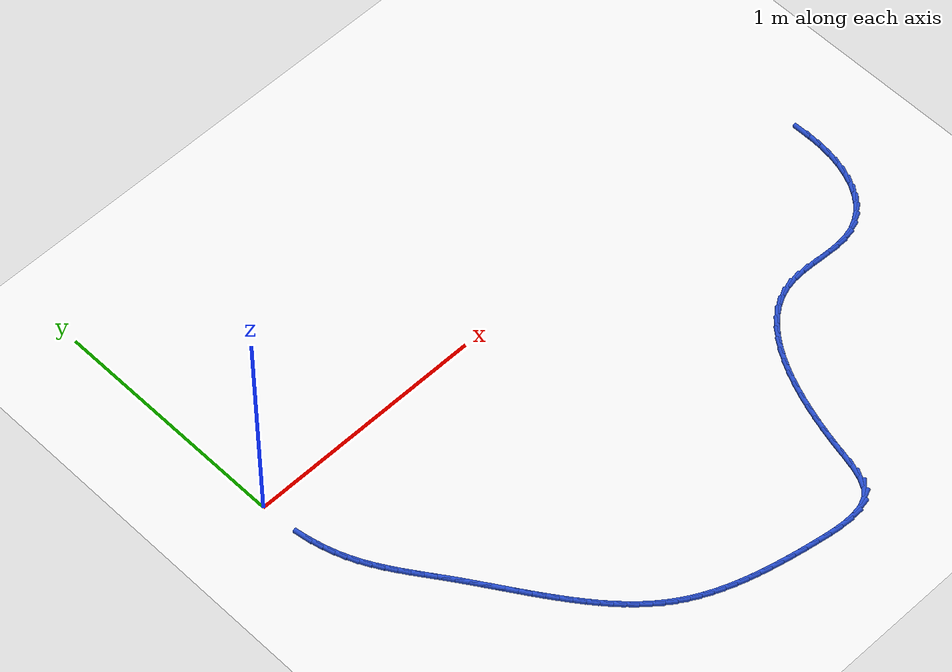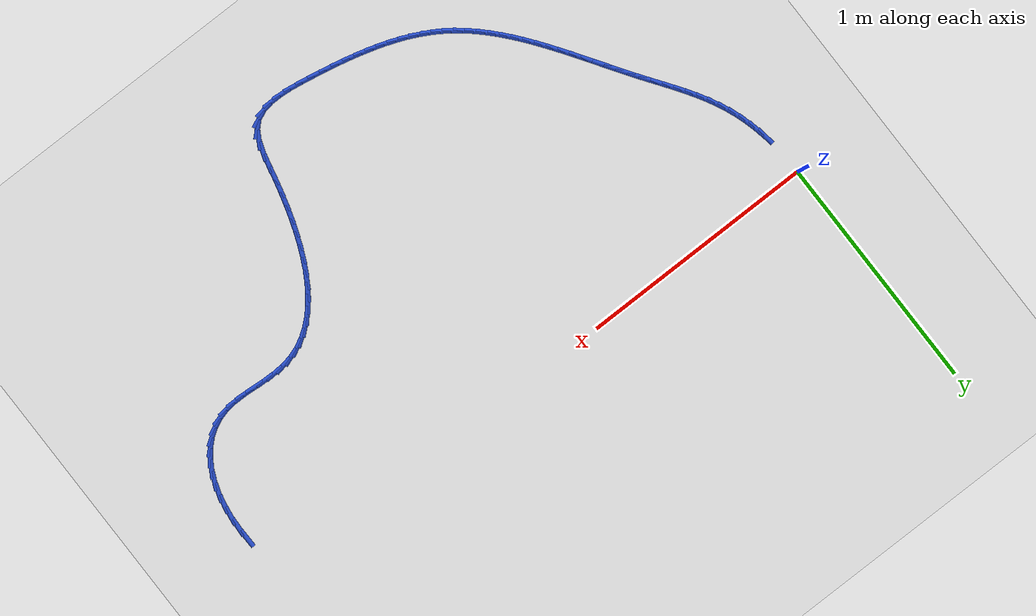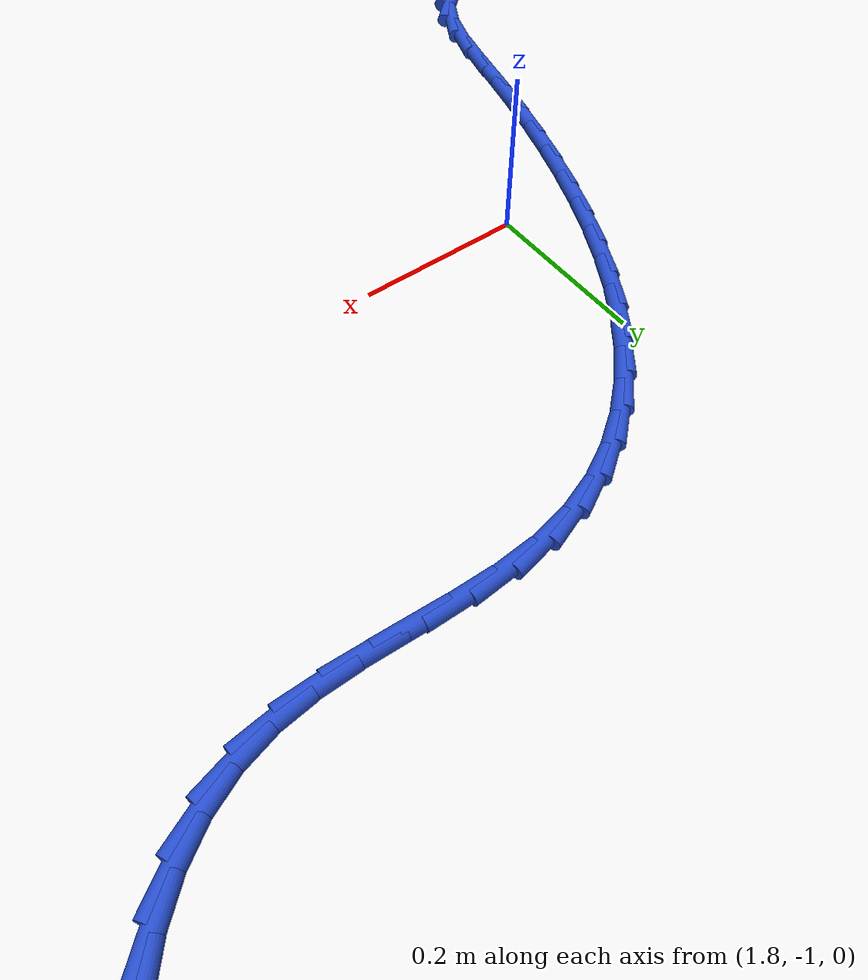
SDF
<sdf version="1.6">
 <world name="default">
  <model name="ground_plane">
   <static>1</static>
   <link name="link">
    <collision name="collision">
     <geometry><plane><normal>0 0 1</normal><size>100 100</size></plane></geometry>
     <surface><friction><ode><mu>100</mu><mu2>50</mu2></ode></friction></surface>
    </collision>
    <visual name="visual">
     <cast_shadows>0</cast_shadows>
     <geometry><plane><normal>0 0 1</normal><size>100 100</size></plane></geometry>
     <material>
      <script><uri>file://media/materials/scripts/gazebo.material</uri><name>Gazebo/WhiteGlow</name></script>
     </material>
    </visual>
   </link>
  </model>
  <model name="line">
   <link name="link_81">
    <pose>2.581419211381479 -0.19078165925782484 0.01 0 1.57 -1.5610725457270038</pose>
    <collision name="collision">
     <geometry><cylinder><radius>0.01</radius><length>0.08</length></cylinder></geometry>
    </collision>
    <visual name="visual">
     <material>
      <script><name>Gazebo/Blue</name><uri>file://media/materials/scripts/gazebo.material</uri></script>
     </material>
     <geometry><cylinder><radius>0.01</radius><length>0.08</length></cylinder></geometry>
    </visual>
   </link>
   <link name="link_82">
    <pose>2.5819640868448097 -0.24681524191579807 0.01 0 1.57 1.5061475454830733</pose>
    <collision name="collision">
     <geometry><cylinder><radius>0.01</radius><length>0.08</length></cylinder></geometry>
    </collision>
    <visual name="visual">
     <material>
      <script><name>Gazebo/Blue</name><uri>file://media/materials/scripts/gazebo.material</uri></script>
     </material>
     <geometry><cylinder><radius>0.01</radius><length>0.08</length></cylinder></geometry>
    </visual>
   </link>
   <link name="link_83">
    <pose>2.578462069793964 -0.30090963886289535 0.01 0 1.57 1.4269497455868427</pose>
    <collision name="collision">
     <geometry><cylinder><radius>0.01</radius><length>0.08</length></cylinder></geometry>
    </collision>
    <visual name="visual">
     <material>
      <script><name>Gazebo/Blue</name><uri>file://media/materials/scripts/gazebo.material</uri></script>
     </material>
     <geometry><cylinder><radius>0.01</radius><length>0.08</length></cylinder></geometry>
    </visual>
   </link>
   <link name="link_84">
    <pose>2.5709711921138307 -0.352625428886454 0.01 0 1.57 1.3413272333123356</pose>
    <collision name="collision">
     <geometry><cylinder><radius>0.01</radius><length>0.08</length></cylinder></geometry>
    </collision>
    <visual name="visual">
     <material>
      <script><name>Gazebo/Blue</name><uri>file://media/materials/scripts/gazebo.material</uri></script>
     </material>
     <geometry><cylinder><radius>0.01</radius><length>0.08</length></cylinder></geometry>
    </visual>
   </link>
   <link name="link_85">
    <pose>2.559549485689301 -0.4015231907738092 0.01 0 1.57 1.2474480559955012</pose>
    <collision name="collision">
     <geometry><cylinder><radius>0.01</radius><length>0.08</length></cylinder></geometry>
    </collision>
    <visual name="visual">
     <material>
      <script><name>Gazebo/Blue</name><uri>file://media/materials/scripts/gazebo.material</uri></script>
     </material>
     <geometry><cylinder><radius>0.01</radius><length>0.08</length></cylinder></geometry>
    </visual>
   </link>
   <link name="link_86">
    <pose>2.5442549824052665 -0.4471635033122984 0.01 0 1.57 1.1432984444206136</pose>
    <collision name="collision">
     <geometry><cylinder><radius>0.01</radius><length>0.08</length></cylinder></geometry>
    </collision>
    <visual name="visual">
     <material>
      <script><name>Gazebo/Blue</name><uri>file://media/materials/scripts/gazebo.material</uri></script>
     </material>
     <geometry><cylinder><radius>0.01</radius><length>0.08</length></cylinder></geometry>
    </visual>
   </link>
   <link name="link_87">
    <pose>2.5251457141466163 -0.4891069452892577 0.01 0 1.57 1.026850299625803</pose>
    <collision name="collision">
     <geometry><cylinder><radius>0.01</radius><length>0.08</length></cylinder></geometry>
    </collision>
    <visual name="visual">
     <material>
      <script><name>Gazebo/Blue</name><uri>file://media/materials/scripts/gazebo.material</uri></script>
     </material>
     <geometry><cylinder><radius>0.01</radius><length>0.08</length></cylinder></geometry>
    </visual>
   </link>
   <link name="link_88">
    <pose>2.502279712798243 -0.5269140954920237 0.01 0 1.57 0.8964306785856334</pose>
    <collision name="collision">
     <geometry><cylinder><radius>0.01</radius><length>0.08</length></cylinder></geometry>
    </collision>
    <visual name="visual">
     <material>
      <script><name>Gazebo/Blue</name><uri>file://media/materials/scripts/gazebo.material</uri></script>
     </material>
     <geometry><cylinder><radius>0.01</radius><length>0.08</length></cylinder></geometry>
    </visual>
   </link>
   <link name="link_89">
    <pose>2.475715010245036 -0.5601455327079334 0.01 0 1.57 0.7513645477855875</pose>
    <collision name="collision">
     <geometry><cylinder><radius>0.01</radius><length>0.08</length></cylinder></geometry>
    </collision>
    <visual name="visual">
     <material>
      <script><name>Gazebo/Blue</name><uri>file://media/materials/scripts/gazebo.material</uri></script>
     </material>
     <geometry><cylinder><radius>0.01</radius><length>0.08</length></cylinder></geometry>
    </visual>
   </link>
   <link name="link_90">
    <pose>2.4455096383718864 -0.5883618357243221 0.01 0 1.57 0.5928309148281456</pose>
    <collision name="collision">
     <geometry><cylinder><radius>0.01</radius><length>0.08</length></cylinder></geometry>
    </collision>
    <visual name="visual">
     <material>
      <script><name>Gazebo/Blue</name><uri>file://media/materials/scripts/gazebo.material</uri></script>
     </material>
     <geometry><cylinder><radius>0.01</radius><length>0.08</length></cylinder></geometry>
    </visual>
   </link>
   <link name="link_91">
    <pose>2.4117216290636856 -0.6111235833285267 0.01 0 1.57 0.42457082757370873</pose>
    <collision name="collision">
     <geometry><cylinder><radius>0.01</radius><length>0.08</length></cylinder></geometry>
    </collision>
    <visual name="visual">
     <material>
      <script><name>Gazebo/Blue</name><uri>file://media/materials/scripts/gazebo.material</uri></script>
     </material>
     <geometry><cylinder><radius>0.01</radius><length>0.08</length></cylinder></geometry>
    </visual>
   </link>
   <link name="link_92">
    <pose>2.374409014205324 -0.6279913543078838 0.01 0 1.57 0.2528009823300197</pose>
    <collision name="collision">
     <geometry><cylinder><radius>0.01</radius><length>0.08</length></cylinder></geometry>
    </collision>
    <visual name="visual">
     <material>
      <script><name>Gazebo/Blue</name><uri>file://media/materials/scripts/gazebo.material</uri></script>
     </material>
     <geometry><cylinder><radius>0.01</radius><length>0.08</length></cylinder></geometry>
    </visual>
   </link>
   <link name="link_93">
    <pose>2.3336298322615705 -0.6385257453406428 0.01 0 1.57 0.09587664319677937</pose>
    <collision name="collision">
     <geometry><cylinder><radius>0.01</radius><length>0.08</length></cylinder></geometry>
    </collision>
    <visual name="visual">
     <material>
      <script><name>Gazebo/Blue</name><uri>file://media/materials/scripts/gazebo.material</uri></script>
     </material>
     <geometry><cylinder><radius>0.01</radius><length>0.08</length></cylinder></geometry>
    </visual>
   </link>
   <link name="link_94">
    <pose>2.289615462782482 -0.6427586734524439 0.01 0 1.57 -0.007282490963151436</pose>
    <collision name="collision">
     <geometry><cylinder><radius>0.01</radius><length>0.08</length></cylinder></geometry>
    </collision>
    <visual name="visual">
     <material>
      <script><name>Gazebo/Blue</name><uri>file://media/materials/scripts/gazebo.material</uri></script>
     </material>
     <geometry><cylinder><radius>0.01</radius><length>0.08</length></cylinder></geometry>
    </visual>
   </link>
   <link name="link_95">
    <pose>2.243222048390222 -0.6424208078584974 0.01 0 1.57 -0.05844444279011089</pose>
    <collision name="collision">
     <geometry><cylinder><radius>0.01</radius><length>0.08</length></cylinder></geometry>
    </collision>
    <visual name="visual">
     <material>
      <script><name>Gazebo/Blue</name><uri>file://media/materials/scripts/gazebo.material</uri></script>
     </material>
     <geometry><cylinder><radius>0.01</radius><length>0.08</length></cylinder></geometry>
    </visual>
   </link>
   <link name="link_96">
    <pose>2.195446438902185 -0.6396254054567174 0.01 0 1.57 -0.06509932848734079</pose>
    <collision name="collision">
     <geometry><cylinder><radius>0.01</radius><length>0.08</length></cylinder></geometry>
    </collision>
    <visual name="visual">
     <material>
      <script><name>Gazebo/Blue</name><uri>file://media/materials/scripts/gazebo.material</uri></script>
     </material>
     <geometry><cylinder><radius>0.01</radius><length>0.08</length></cylinder></geometry>
    </visual>
   </link>
   <link name="link_97">
    <pose>2.1472854841357654 -0.6364857231450172 0.01 0 1.57 -0.028818962665539755</pose>
    <collision name="collision">
     <geometry><cylinder><radius>0.01</radius><length>0.08</length></cylinder></geometry>
    </collision>
    <visual name="visual">
     <material>
      <script><name>Gazebo/Blue</name><uri>file://media/materials/scripts/gazebo.material</uri></script>
     </material>
     <geometry><cylinder><radius>0.01</radius><length>0.08</length></cylinder></geometry>
    </visual>
   </link>
   <link name="link_98">
    <pose>2.099736033908359 -0.6351150178213111 0.01 0 1.57 0.05461408731717224</pose>
    <collision name="collision">
     <geometry><cylinder><radius>0.01</radius><length>0.08</length></cylinder></geometry>
    </collision>
    <visual name="visual">
     <material>
      <script><name>Gazebo/Blue</name><uri>file://media/materials/scripts/gazebo.material</uri></script>
     </material>
     <geometry><cylinder><radius>0.01</radius><length>0.08</length></cylinder></geometry>
    </visual>
   </link>
   <link name="link_99">
    <pose>2.05379493803736 -0.6376265463835126 0.01 0 1.57 0.1874426333541303</pose>
    <collision name="collision">
     <geometry><cylinder><radius>0.01</radius><length>0.08</length></cylinder></geometry>
    </collision>
    <visual name="visual">
     <material>
      <script><name>Gazebo/Blue</name><uri>file://media/materials/scripts/gazebo.material</uri></script>
     </material>
     <geometry><cylinder><radius>0.01</radius><length>0.08</length></cylinder></geometry>
    </visual>
   </link>
   <link name="link_100">
    <pose>2.010344941418985 -0.6458676715998677 0.01 0 1.57 0.33455746329322894</pose>
    <collision name="collision">
     <geometry><cylinder><radius>0.01</radius><length>0.08</length></cylinder></geometry>
    </collision>
    <visual name="visual">
     <material>
      <script><name>Gazebo/Blue</name><uri>file://media/materials/scripts/gazebo.material</uri></script>
     </material>
     <geometry><cylinder><radius>0.01</radius><length>0.08</length></cylinder></geometry>
    </visual>
   </link>
   <link name="link_101">
    <pose>1.9695642735683727 -0.6600440522511898 0.01 0 1.57 0.4759371686531358</pose>
    <collision name="collision">
     <geometry><cylinder><radius>0.01</radius><length>0.08</length></cylinder></geometry>
    </collision>
    <visual name="visual">
     <material>
      <script><name>Gazebo/Blue</name><uri>file://media/materials/scripts/gazebo.material</uri></script>
     </material>
     <geometry><cylinder><radius>0.01</radius><length>0.08</length></cylinder></geometry>
    </visual>
   </link>
   <link name="link_102">
    <pose>1.9313625565398325 -0.6797354219059512 0.01 0 1.57 0.606679565020693</pose>
    <collision name="collision">
     <geometry><cylinder><radius>0.01</radius><length>0.08</length></cylinder></geometry>
    </collision>
    <visual name="visual">
     <material>
      <script><name>Gazebo/Blue</name><uri>file://media/materials/scripts/gazebo.material</uri></script>
     </material>
     <geometry><cylinder><radius>0.01</radius><length>0.08</length></cylinder></geometry>
    </visual>
   </link>
   <link name="link_103">
    <pose>1.8956488821093445 -0.7045202784462603 0.01 0 1.57 0.7239892392452391</pose>
    <collision name="collision">
     <geometry><cylinder><radius>0.01</radius><length>0.08</length></cylinder></geometry>
    </collision>
    <visual name="visual">
     <material>
      <script><name>Gazebo/Blue</name><uri>file://media/materials/scripts/gazebo.material</uri></script>
     </material>
     <geometry><cylinder><radius>0.01</radius><length>0.08</length></cylinder></geometry>
    </visual>
   </link>
   <link name="link_104">
    <pose>1.862332342052887 -0.733977119754225 0.01 0 1.57 0.8270475573479693</pose>
    <collision name="collision">
     <geometry><cylinder><radius>0.01</radius><length>0.08</length></cylinder></geometry>
    </collision>
    <visual name="visual">
     <material>
      <script><name>Gazebo/Blue</name><uri>file://media/materials/scripts/gazebo.material</uri></script>
     </material>
     <geometry><cylinder><radius>0.01</radius><length>0.08</length></cylinder></geometry>
    </visual>
   </link>
   <link name="link_105">
    <pose>1.8313220281464413 -0.7676844437119525 0.01 0 1.57 0.9164257005621899</pose>
    <collision name="collision">
     <geometry><cylinder><radius>0.01</radius><length>0.08</length></cylinder></geometry>
    </collision>
    <visual name="visual">
     <material>
      <script><name>Gazebo/Blue</name><uri>file://media/materials/scripts/gazebo.material</uri></script>
     </material>
     <geometry><cylinder><radius>0.01</radius><length>0.08</length></cylinder></geometry>
    </visual>
   </link>
   <link name="link_106">
    <pose>1.8025270321659868 -0.8052207482015511 0.01 0 1.57 0.9934408779567252</pose>
    <collision name="collision">
     <geometry><cylinder><radius>0.01</radius><length>0.08</length></cylinder></geometry>
    </collision>
    <visual name="visual">
     <material>
      <script><name>Gazebo/Blue</name><uri>file://media/materials/scripts/gazebo.material</uri></script>
     </material>
     <geometry><cylinder><radius>0.01</radius><length>0.08</length></cylinder></geometry>
    </visual>
   </link>
   <link name="link_107">
    <pose>1.775856445887502 -0.8461645311051285 0.01 0 1.57 1.0596771052557097</pose>
    <collision name="collision">
     <geometry><cylinder><radius>0.01</radius><length>0.08</length></cylinder></geometry>
    </collision>
    <visual name="visual">
     <material>
      <script><name>Gazebo/Blue</name><uri>file://media/materials/scripts/gazebo.material</uri></script>
     </material>
     <geometry><cylinder><radius>0.01</radius><length>0.08</length></cylinder></geometry>
    </visual>
   </link>
   <link name="link_108">
    <pose>1.7512193610869673 -0.8900942903047927 0.01 0 1.57 1.116702559371937</pose>
    <collision name="collision">
     <geometry><cylinder><radius>0.01</radius><length>0.08</length></cylinder></geometry>
    </collision>
    <visual name="visual">
     <material>
      <script><name>Gazebo/Blue</name><uri>file://media/materials/scripts/gazebo.material</uri></script>
     </material>
     <geometry><cylinder><radius>0.01</radius><length>0.08</length></cylinder></geometry>
    </visual>
   </link>
   <link name="link_109">
    <pose>1.7285248695403623 -0.9365885236826517 0.01 0 1.57 1.1659342452953827</pose>
    <collision name="collision">
     <geometry><cylinder><radius>0.01</radius><length>0.08</length></cylinder></geometry>
    </collision>
    <visual name="visual">
     <material>
      <script><name>Gazebo/Blue</name><uri>file://media/materials/scripts/gazebo.material</uri></script>
     </material>
     <geometry><cylinder><radius>0.01</radius><length>0.08</length></cylinder></geometry>
    </visual>
   </link>
   <link name="link_110">
    <pose>1.707682063023665 -0.9852257291208139 0.01 0 1.57 1.208591289808119</pose>
    <collision name="collision">
     <geometry><cylinder><radius>0.01</radius><length>0.08</length></cylinder></geometry>
    </collision>
    <visual name="visual">
     <material>
      <script><name>Gazebo/Blue</name><uri>file://media/materials/scripts/gazebo.material</uri></script>
     </material>
     <geometry><cylinder><radius>0.01</radius><length>0.08</length></cylinder></geometry>
    </visual>
   </link>
   <link name="link_111">
    <pose>1.6886000333128572 -1.0355844045013858 0.01 0 1.57 1.2456938122071488</pose>
    <collision name="collision">
     <geometry><cylinder><radius>0.01</radius><length>0.08</length></cylinder></geometry>
    </collision>
    <visual name="visual">
     <material>
      <script><name>Gazebo/Blue</name><uri>file://media/materials/scripts/gazebo.material</uri></script>
     </material>
     <geometry><cylinder><radius>0.01</radius><length>0.08</length></cylinder></geometry>
    </visual>
   </link>
   <link name="link_112">
    <pose>1.6711878721839168 -1.0872430477064758 0.01 0 1.57 1.2780815161427572</pose>
    <collision name="collision">
     <geometry><cylinder><radius>0.01</radius><length>0.08</length></cylinder></geometry>
    </collision>
    <visual name="visual">
     <material>
      <script><name>Gazebo/Blue</name><uri>file://media/materials/scripts/gazebo.material</uri></script>
     </material>
     <geometry><cylinder><radius>0.01</radius><length>0.08</length></cylinder></geometry>
    </visual>
   </link>
   <link name="link_113">
    <pose>1.6553546714128249 -1.1397801566181922 0.01 0 1.57 1.3064382671526795</pose>
    <collision name="collision">
     <geometry><cylinder><radius>0.01</radius><length>0.08</length></cylinder></geometry>
    </collision>
    <visual name="visual">
     <material>
      <script><name>Gazebo/Blue</name><uri>file://media/materials/scripts/gazebo.material</uri></script>
     </material>
     <geometry><cylinder><radius>0.01</radius><length>0.08</length></cylinder></geometry>
    </visual>
   </link>
   <link name="link_114">
    <pose>1.6410095227755597 -1.1927742291186427 0.01 0 1.57 1.3313160588822843</pose>
    <collision name="collision">
     <geometry><cylinder><radius>0.01</radius><length>0.08</length></cylinder></geometry>
    </collision>
    <visual name="visual">
     <material>
      <script><name>Gazebo/Blue</name><uri>file://media/materials/scripts/gazebo.material</uri></script>
     </material>
     <geometry><cylinder><radius>0.01</radius><length>0.08</length></cylinder></geometry>
    </visual>
   </link>
   <link name="link_115">
    <pose>1.6280615180481004 -1.2458037630899357 0.01 0 1.57 1.3471379978474096</pose>
    <collision name="collision">
     <geometry><cylinder><radius>0.01</radius><length>0.08</length></cylinder></geometry>
    </collision>
    <visual name="visual">
     <material>
      <script><name>Gazebo/Blue</name><uri>file://media/materials/scripts/gazebo.material</uri></script>
     </material>
     <geometry><cylinder><radius>0.01</radius><length>0.08</length></cylinder></geometry>
    </visual>
   </link>
   <link name="link_116">
    <pose>1.6161449607418965 -1.2981925594622221 0.01 0 1.57 1.3208327160945754</pose>
    <collision name="collision">
     <geometry><cylinder><radius>0.01</radius><length>0.08</length></cylinder></geometry>
    </collision>
    <visual name="visual">
     <material>
      <script><name>Gazebo/Blue</name><uri>file://media/materials/scripts/gazebo.material</uri></script>
     </material>
     <geometry><cylinder><radius>0.01</radius><length>0.08</length></cylinder></geometry>
    </visual>
   </link>
   <link name="link_117">
    <pose>1.6034482963791585 -1.3479242759705035 0.01 0 1.57 1.2312192019382784</pose>
    <collision name="collision">
     <geometry><cylinder><radius>0.01</radius><length>0.08</length></cylinder></geometry>
    </collision>
    <visual name="visual">
     <material>
      <script><name>Gazebo/Blue</name><uri>file://media/materials/scripts/gazebo.material</uri></script>
     </material>
     <geometry><cylinder><radius>0.01</radius><length>0.08</length></cylinder></geometry>
    </visual>
   </link>
   <link name="link_118">
    <pose>1.5876861086858398 -1.3925433552495259 0.01 0 1.57 1.0528389584469708</pose>
    <collision name="collision">
     <geometry><cylinder><radius>0.01</radius><length>0.08</length></cylinder></geometry>
    </collision>
    <visual name="visual">
     <material>
      <script><name>Gazebo/Blue</name><uri>file://media/materials/scripts/gazebo.material</uri></script>
     </material>
     <geometry><cylinder><radius>0.01</radius><length>0.08</length></cylinder></geometry>
    </visual>
   </link>
   <link name="link_119">
    <pose>1.5665727061528454 -1.4295939848229664 0.01 0 1.57 0.7553313184631152</pose>
    <collision name="collision">
     <geometry><cylinder><radius>0.01</radius><length>0.08</length></cylinder></geometry>
    </collision>
    <visual name="visual">
     <material>
      <script><name>Gazebo/Blue</name><uri>file://media/materials/scripts/gazebo.material</uri></script>
     </material>
     <geometry><cylinder><radius>0.01</radius><length>0.08</length></cylinder></geometry>
    </visual>
   </link>
   <link name="link_120">
    <pose>1.5378447572631029 -1.456644350235125 0.01 0 1.57 0.41199673302397594</pose>
    <collision name="collision">
     <geometry><cylinder><radius>0.01</radius><length>0.08</length></cylinder></geometry>
    </collision>
    <visual name="visual">
     <material>
      <script><name>Gazebo/Blue</name><uri>file://media/materials/scripts/gazebo.material</uri></script>
     </material>
     <geometry><cylinder><radius>0.01</radius><length>0.08</length></cylinder></geometry>
    </visual>
   </link>
   <link name="link_121">
    <pose>1.5007305483694402 -1.472863526528269 0.01 0 1.57 0.1612459716296932</pose>
    <collision name="collision">
     <geometry><cylinder><radius>0.01</radius><length>0.08</length></cylinder></geometry>
    </collision>
    <visual name="visual">
     <material>
      <script><name>Gazebo/Blue</name><uri>file://media/materials/scripts/gazebo.material</uri></script>
     </material>
     <geometry><cylinder><radius>0.01</radius><length>0.08</length></cylinder></geometry>
    </visual>
   </link>
   <link name="link_122">
    <pose>1.4568610264287323 -1.4799992613429276 0.01 0 1.57 0.0006896143218497427</pose>
    <collision name="collision">
     <geometry><cylinder><radius>0.01</radius><length>0.08</length></cylinder></geometry>
    </collision>
    <visual name="visual">
     <material>
      <script><name>Gazebo/Blue</name><uri>file://media/materials/scripts/gazebo.material</uri></script>
     </material>
     <geometry><cylinder><radius>0.01</radius><length>0.08</length></cylinder></geometry>
    </visual>
   </link>
   <link name="link_123">
    <pose>1.408084789709788 -1.480032898139667 0.01 0 1.57 -0.0978285337762168</pose>
    <collision name="collision">
     <geometry><cylinder><radius>0.01</radius><length>0.08</length></cylinder></geometry>
    </collision>
    <visual name="visual">
     <material>
      <script><name>Gazebo/Blue</name><uri>file://media/materials/scripts/gazebo.material</uri></script>
     </material>
     <geometry><cylinder><radius>0.01</radius><length>0.08</length></cylinder></geometry>
    </visual>
   </link>
   <link name="link_124">
    <pose>1.356250436481418 -1.474945780379054 0.01 0 1.57 -0.15386335586679753</pose>
    <collision name="collision">
     <geometry><cylinder><radius>0.01</radius><length>0.08</length></cylinder></geometry>
    </collision>
    <visual name="visual">
     <material>
      <script><name>Gazebo/Blue</name><uri>file://media/materials/scripts/gazebo.material</uri></script>
     </material>
     <geometry><cylinder><radius>0.01</radius><length>0.08</length></cylinder></geometry>
    </visual>
   </link>
   <link name="link_125">
    <pose>1.3032065650124345 -1.466719251521654 0.01 0 1.57 -0.17832237911852417</pose>
    <collision name="collision">
     <geometry><cylinder><radius>0.01</radius><length>0.08</length></cylinder></geometry>
    </collision>
    <visual name="visual">
     <material>
      <script><name>Gazebo/Blue</name><uri>file://media/materials/scripts/gazebo.material</uri></script>
     </material>
     <geometry><cylinder><radius>0.01</radius><length>0.08</length></cylinder></geometry>
    </visual>
   </link>
   <link name="link_126">
    <pose>1.2507393488214709 -1.4572627239338896 0.01 0 1.57 -0.1916197862090715</pose>
    <collision name="collision">
     <geometry><cylinder><radius>0.01</radius><length>0.08</length></cylinder></geometry>
    </collision>
    <visual name="visual">
     <material>
      <script><name>Gazebo/Blue</name><uri>file://media/materials/scripts/gazebo.material</uri></script>
     </material>
     <geometry><cylinder><radius>0.01</radius><length>0.08</length></cylinder></geometry>
    </visual>
   </link>
   <link name="link_127">
    <pose>1.1996507652965638 -1.4473515356875013 0.01 0 1.57 -0.20812343477354478</pose>
    <collision name="collision">
     <geometry><cylinder><radius>0.01</radius><length>0.08</length></cylinder></geometry>
    </collision>
    <visual name="visual">
     <material>
      <script><name>Gazebo/Blue</name><uri>file://media/materials/scripts/gazebo.material</uri></script>
     </material>
     <geometry><cylinder><radius>0.01</radius><length>0.08</length></cylinder></geometry>
    </visual>
   </link>
   <link name="link_128">
    <pose>1.149958665553003 -1.4368574880265013 0.01 0 1.57 -0.22845212292966158</pose>
    <collision name="collision">
     <geometry><cylinder><radius>0.01</radius><length>0.08</length></cylinder></geometry>
    </collision>
    <visual name="visual">
     <material>
      <script><name>Gazebo/Blue</name><uri>file://media/materials/scripts/gazebo.material</uri></script>
     </material>
     <geometry><cylinder><radius>0.01</radius><length>0.08</length></cylinder></geometry>
    </visual>
   </link>
   <link name="link_129">
    <pose>1.1016591388495311 -1.4256273063372076 0.01 0 1.57 -0.25282528324213105</pose>
    <collision name="collision">
     <geometry><cylinder><radius>0.01</radius><length>0.08</length></cylinder></geometry>
    </collision>
    <visual name="visual">
     <material>
      <script><name>Gazebo/Blue</name><uri>file://media/materials/scripts/gazebo.material</uri></script>
     </material>
     <geometry><cylinder><radius>0.01</radius><length>0.08</length></cylinder></geometry>
    </visual>
   </link>
   <link name="link_130">
    <pose>1.054748274444893 -1.4135077160059393 0.01 0 1.57 -0.28144071061139536</pose>
    <collision name="collision">
     <geometry><cylinder><radius>0.01</radius><length>0.08</length></cylinder></geometry>
    </collision>
    <visual name="visual">
     <material>
      <script><name>Gazebo/Blue</name><uri>file://media/materials/scripts/gazebo.material</uri></script>
     </material>
     <geometry><cylinder><radius>0.01</radius><length>0.08</length></cylinder></geometry>
    </visual>
   </link>
   <link name="link_131">
    <pose>1.0092221615978305 -1.4003454424190132 0.01 0 1.57 -0.3144576246113505</pose>
    <collision name="collision">
     <geometry><cylinder><radius>0.01</radius><length>0.08</length></cylinder></geometry>
    </collision>
    <visual name="visual">
     <material>
      <script><name>Gazebo/Blue</name><uri>file://media/materials/scripts/gazebo.material</uri></script>
     </material>
     <geometry><cylinder><radius>0.01</radius><length>0.08</length></cylinder></geometry>
    </visual>
   </link>
   <link name="link_132">
    <pose>0.965076889567089 -1.385987210962748 0.01 0 1.57 -0.3519751824011825</pose>
    <collision name="collision">
     <geometry><cylinder><radius>0.01</radius><length>0.08</length></cylinder></geometry>
    </collision>
    <visual name="visual">
     <material>
      <script><name>Gazebo/Blue</name><uri>file://media/materials/scripts/gazebo.material</uri></script>
     </material>
     <geometry><cylinder><radius>0.01</radius><length>0.08</length></cylinder></geometry>
    </visual>
   </link>
   <link name="link_133">
    <pose>0.9223085476114115 -1.3702797470234627 0.01 0 1.57 -0.3940070333876397</pose>
    <collision name="collision">
     <geometry><cylinder><radius>0.01</radius><length>0.08</length></cylinder></geometry>
    </collision>
    <visual name="visual">
     <material>
      <script><name>Gazebo/Blue</name><uri>file://media/materials/scripts/gazebo.material</uri></script>
     </material>
     <geometry><cylinder><radius>0.01</radius><length>0.08</length></cylinder></geometry>
    </visual>
   </link>
   <link name="link_134">
    <pose>0.8809132249895414 -1.3530697759874748 0.01 0 1.57 -0.44045372271223027</pose>
    <collision name="collision">
     <geometry><cylinder><radius>0.01</radius><length>0.08</length></cylinder></geometry>
    </collision>
    <visual name="visual">
     <material>
      <script><name>Gazebo/Blue</name><uri>file://media/materials/scripts/gazebo.material</uri></script>
     </material>
     <geometry><cylinder><radius>0.01</radius><length>0.08</length></cylinder></geometry>
    </visual>
   </link>
   <link name="link_135">
    <pose>0.8408870109602222 -1.334204023241102 0.01 0 1.57 -0.49107632657162625</pose>
    <collision name="collision">
     <geometry><cylinder><radius>0.01</radius><length>0.08</length></cylinder></geometry>
    </collision>
    <visual name="visual">
     <material>
      <script><name>Gazebo/Blue</name><uri>file://media/materials/scripts/gazebo.material</uri></script>
     </material>
     <geometry><cylinder><radius>0.01</radius><length>0.08</length></cylinder></geometry>
    </visual>
   </link>
   <link name="link_136">
    <pose>0.8022259947821968 -1.313529214170663 0.01 0 1.57 -0.5454763044075971</pose>
    <collision name="collision">
     <geometry><cylinder><radius>0.01</radius><length>0.08</length></cylinder></geometry>
    </collision>
    <visual name="visual">
     <material>
      <script><name>Gazebo/Blue</name><uri>file://media/materials/scripts/gazebo.material</uri></script>
     </material>
     <geometry><cylinder><radius>0.01</radius><length>0.08</length></cylinder></geometry>
    </visual>
   </link>
   <link name="link_137">
    <pose>0.7649262657142105 -1.2908920741624765 0.01 0 1.57 -0.6030875383116445</pose>
    <collision name="collision">
     <geometry><cylinder><radius>0.01</radius><length>0.08</length></cylinder></geometry>
    </collision>
    <visual name="visual">
     <material>
      <script><name>Gazebo/Blue</name><uri>file://media/materials/scripts/gazebo.material</uri></script>
     </material>
     <geometry><cylinder><radius>0.01</radius><length>0.08</length></cylinder></geometry>
    </visual>
   </link>
   <link name="link_138">
    <pose>0.728983913015006 -1.2661393286028602 0.01 0 1.57 -0.6621223279258929</pose>
    <collision name="collision">
     <geometry><cylinder><radius>0.01</radius><length>0.08</length></cylinder></geometry>
    </collision>
    <visual name="visual">
     <material>
      <script><name>Gazebo/Blue</name><uri>file://media/materials/scripts/gazebo.material</uri></script>
     </material>
     <geometry><cylinder><radius>0.01</radius><length>0.08</length></cylinder></geometry>
    </visual>
   </link>
   <link name="link_139">
    <pose>0.6943804623649257 -1.239165550670517 0.01 0 1.57 -0.717092571900893</pose>
    <collision name="collision">
     <geometry><cylinder><radius>0.01</radius><length>0.08</length></cylinder></geometry>
    </collision>
    <visual name="visual">
     <material>
      <script><name>Gazebo/Blue</name><uri>file://media/materials/scripts/gazebo.material</uri></script>
     </material>
     <geometry><cylinder><radius>0.01</radius><length>0.08</length></cylinder></geometry>
    </visual>
   </link>
   <link name="link_140">
    <pose>0.6610302005144162 -1.210086223149559 0.01 0 1.57 -0.7664709005663916</pose>
    <collision name="collision">
     <geometry><cylinder><radius>0.01</radius><length>0.08</length></cylinder></geometry>
    </collision>
    <visual name="visual">
     <material>
      <script><name>Gazebo/Blue</name><uri>file://media/materials/scripts/gazebo.material</uri></script>
     </material>
     <geometry><cylinder><radius>0.01</radius><length>0.08</length></cylinder></geometry>
    </visual>
   </link>
   <link name="link_141">
    <pose>0.628828022348099 -1.1790805396748523 0.01 0 1.57 -0.8103278658568064</pose>
    <collision name="collision">
     <geometry><cylinder><radius>0.01</radius><length>0.08</length></cylinder></geometry>
    </collision>
    <visual name="visual">
     <material>
      <script><name>Gazebo/Blue</name><uri>file://media/materials/scripts/gazebo.material</uri></script>
     </material>
     <geometry><cylinder><radius>0.01</radius><length>0.08</length></cylinder></geometry>
    </visual>
   </link>
   <link name="link_142">
    <pose>0.5976688209145212 -1.1463276999135745 0.01 0 1.57 -0.8488290625810638</pose>
    <collision name="collision">
     <geometry><cylinder><radius>0.01</radius><length>0.08</length></cylinder></geometry>
    </collision>
    <visual name="visual">
     <material>
      <script><name>Gazebo/Blue</name><uri>file://media/materials/scripts/gazebo.material</uri></script>
     </material>
     <geometry><cylinder><radius>0.01</radius><length>0.08</length></cylinder></geometry>
    </visual>
   </link>
   <link name="link_143">
    <pose>0.5674474892622317 -1.1120069035329068 0.01 0 1.57 -0.88219405532404</pose>
    <collision name="collision">
     <geometry><cylinder><radius>0.01</radius><length>0.08</length></cylinder></geometry>
    </collision>
    <visual name="visual">
     <material>
      <script><name>Gazebo/Blue</name><uri>file://media/materials/scripts/gazebo.material</uri></script>
     </material>
     <geometry><cylinder><radius>0.01</radius><length>0.08</length></cylinder></geometry>
    </visual>
   </link>
   <link name="link_144">
    <pose>0.538058920439778 -1.0762973502000281 0.01 0 1.57 -0.9106643216988214</pose>
    <collision name="collision">
     <geometry><cylinder><radius>0.01</radius><length>0.08</length></cylinder></geometry>
    </collision>
    <visual name="visual">
     <material>
      <script><name>Gazebo/Blue</name><uri>file://media/materials/scripts/gazebo.material</uri></script>
     </material>
     <geometry><cylinder><radius>0.01</radius><length>0.08</length></cylinder></geometry>
    </visual>
   </link>
   <link name="link_145">
    <pose>0.5093980074957076 -1.0393782395821174 0.01 0 1.57 -0.9344797297804853</pose>
    <collision name="collision">
     <geometry><cylinder><radius>0.01</radius><length>0.08</length></cylinder></geometry>
    </collision>
    <visual name="visual">
     <material>
      <script><name>Gazebo/Blue</name><uri>file://media/materials/scripts/gazebo.material</uri></script>
     </material>
     <geometry><cylinder><radius>0.01</radius><length>0.08</length></cylinder></geometry>
    </visual>
   </link>
   <link name="link_146">
    <pose>0.4813596434785684 -1.0014287713463546 0.01 0 1.57 -0.9538621923595678</pose>
    <collision name="collision">
     <geometry><cylinder><radius>0.01</radius><length>0.08</length></cylinder></geometry>
    </collision>
    <visual name="visual">
     <material>
      <script><name>Gazebo/Blue</name><uri>file://media/materials/scripts/gazebo.material</uri></script>
     </material>
     <geometry><cylinder><radius>0.01</radius><length>0.08</length></cylinder></geometry>
    </visual>
   </link>
   <link name="link_147">
    <pose>0.45383872143690757 -0.9626281451599177 0.01 0 1.57 -0.969004849408462</pose>
    <collision name="collision">
     <geometry><cylinder><radius>0.01</radius><length>0.08</length></cylinder></geometry>
    </collision>
    <visual name="visual">
     <material>
      <script><name>Gazebo/Blue</name><uri>file://media/materials/scripts/gazebo.material</uri></script>
     </material>
     <geometry><cylinder><radius>0.01</radius><length>0.08</length></cylinder></geometry>
    </visual>
   </link>
   <link name="link_148">
    <pose>0.42673013441927404 -0.9231555606899878 0.01 0 1.57 -0.9800652338736374</pose>
    <collision name="collision">
     <geometry><cylinder><radius>0.01</radius><length>0.08</length></cylinder></geometry>
    </collision>
    <visual name="visual">
     <material>
      <script><name>Gazebo/Blue</name><uri>file://media/materials/scripts/gazebo.material</uri></script>
     </material>
     <geometry><cylinder><radius>0.01</radius><length>0.08</length></cylinder></geometry>
    </visual>
   </link>
   <link name="link_149">
    <pose>0.3999287754742151 -0.8831902176037436 0.01 0 1.57 -0.987161149181108</pose>
    <collision name="collision">
     <geometry><cylinder><radius>0.01</radius><length>0.08</length></cylinder></geometry>
    </collision>
    <visual name="visual">
     <material>
      <script><name>Gazebo/Blue</name><uri>file://media/materials/scripts/gazebo.material</uri></script>
     </material>
     <geometry><cylinder><radius>0.01</radius><length>0.08</length></cylinder></geometry>
    </visual>
   </link>
   <link name="link_150">
    <pose>0.3733295376502785 -0.8429113155683645 0.01 0 1.57 -0.9903683007263278</pose>
    <collision name="collision">
     <geometry><cylinder><radius>0.01</radius><length>0.08</length></cylinder></geometry>
    </collision>
    <visual name="visual">
     <material>
      <script><name>Gazebo/Blue</name><uri>file://media/materials/scripts/gazebo.material</uri></script>
     </material>
     <geometry><cylinder><radius>0.01</radius><length>0.08</length></cylinder></geometry>
    </visual>
   </link>
   <link name="link_151">
    <pose>0.3468273139960119 -0.8024980542510297 0.01 0 1.57 -0.9897190187256206</pose>
    <collision name="collision">
     <geometry><cylinder><radius>0.01</radius><length>0.08</length></cylinder></geometry>
    </collision>
    <visual name="visual">
     <material>
      <script><name>Gazebo/Blue</name><uri>file://media/materials/scripts/gazebo.material</uri></script>
     </material>
     <geometry><cylinder><radius>0.01</radius><length>0.08</length></cylinder></geometry>
    </visual>
   </link>
   <link name="link_152">
    <pose>0.32031699755996346 -0.7621296333189188 0.01 0 1.57 -0.9852016690207925</pose>
    <collision name="collision">
     <geometry><cylinder><radius>0.01</radius><length>0.08</length></cylinder></geometry>
    </collision>
    <visual name="visual">
     <material>
      <script><name>Gazebo/Blue</name><uri>file://media/materials/scripts/gazebo.material</uri></script>
     </material>
     <geometry><cylinder><radius>0.01</radius><length>0.08</length></cylinder></geometry>
    </visual>
   </link>
   <link name="link_153">
    <pose>0.2936934813906801 -0.7219852524392101 0.01 0 1.57 -0.9767605772944344</pose>
    <collision name="collision">
     <geometry><cylinder><radius>0.01</radius><length>0.08</length></cylinder></geometry>
    </collision>
    <visual name="visual">
     <material>
      <script><name>Gazebo/Blue</name><uri>file://media/materials/scripts/gazebo.material</uri></script>
     </material>
     <geometry><cylinder><radius>0.01</radius><length>0.08</length></cylinder></geometry>
    </visual>
   </link>
   <link name="link_154">
    <pose>0.2668516585367106 -0.6822441112790847 0.01 0 1.57 -0.9653813572168402</pose>
    <collision name="collision">
     <geometry><cylinder><radius>0.01</radius><length>0.08</length></cylinder></geometry>
    </collision>
    <visual name="visual">
     <material>
      <script><name>Gazebo/Blue</name><uri>file://media/materials/scripts/gazebo.material</uri></script>
     </material>
     <geometry><cylinder><radius>0.01</radius><length>0.08</length></cylinder></geometry>
    </visual>
   </link>
   <link name="link_155">
    <pose>0.23972498428026642 -0.6430502767764334 0.01 0 1.57 -0.9594919284776248</pose>
    <collision name="collision">
     <geometry><cylinder><radius>0.01</radius><length>0.08</length></cylinder></geometry>
    </collision>
    <visual name="visual">
     <material>
      <script><name>Gazebo/Blue</name><uri>file://media/materials/scripts/gazebo.material</uri></script>
     </material>
     <geometry><cylinder><radius>0.01</radius><length>0.08</length></cylinder></geometry>
    </visual>
   </link>
   <link name="link_156">
    <pose>0.21254788480370773 -0.604273611598446 0.01 0 1.57 -0.9632269991508623</pose>
    <collision name="collision">
     <geometry><cylinder><radius>0.01</radius><length>0.08</length></cylinder></geometry>
    </collision>
    <visual name="visual">
     <material>
      <script><name>Gazebo/Blue</name><uri>file://media/materials/scripts/gazebo.material</uri></script>
     </material>
     <geometry><cylinder><radius>0.01</radius><length>0.08</length></cylinder></geometry>
    </visual>
   </link>
   <link name="link_157">
    <pose>0.18569619593136175 -0.5656551449346354 0.01 0 1.57 -0.9768048109693885</pose>
    <collision name="collision">
     <geometry><cylinder><radius>0.01</radius><length>0.08</length></cylinder></geometry>
    </collision>
    <visual name="visual">
     <material>
      <script><name>Gazebo/Blue</name><uri>file://media/materials/scripts/gazebo.material</uri></script>
     </material>
     <geometry><cylinder><radius>0.01</radius><length>0.08</length></cylinder></geometry>
    </visual>
   </link>
   <link name="link_158">
    <pose>0.15954657261988203 -0.5269351596911283 0.01 0 1.57 -1.0004142980373332</pose>
    <collision name="collision">
     <geometry><cylinder><radius>0.01</radius><length>0.08</length></cylinder></geometry>
    </collision>
    <visual name="visual">
     <material>
      <script><name>Gazebo/Blue</name><uri>file://media/materials/scripts/gazebo.material</uri></script>
     </material>
     <geometry><cylinder><radius>0.01</radius><length>0.08</length></cylinder></geometry>
    </visual>
   </link>
   <link name="link_159">
    <pose>0.1344756698259237 -0.48785393877405364 0.01 0 1.57 -1.0341965814602834</pose>
    <collision name="collision">
     <geometry><cylinder><radius>0.01</radius><length>0.08</length></cylinder></geometry>
    </collision>
    <visual name="visual">
     <material>
      <script><name>Gazebo/Blue</name><uri>file://media/materials/scripts/gazebo.material</uri></script>
     </material>
     <geometry><cylinder><radius>0.01</radius><length>0.08</length></cylinder></geometry>
    </visual>
   </link>
   <link name="link_160">
    <pose>0.11086014250614037 -0.4481517650895378 0.01 0 1.57 -1.0781701989555406</pose>
    <collision name="collision">
     <geometry><cylinder><radius>0.01</radius><length>0.08</length></cylinder></geometry>
    </collision>
    <visual name="visual">
     <material>
      <script><name>Gazebo/Blue</name><uri>file://media/materials/scripts/gazebo.material</uri></script>
     </material>
     <geometry><cylinder><radius>0.01</radius><length>0.08</length></cylinder></geometry>
    </visual>
   </link>
   <link name="link_161">
    <pose>0.08907664561718617 -0.4075689215437086 0.01 0 1.57 -1.1321248442637963</pose>
    <collision name="collision">
     <geometry><cylinder><radius>0.01</radius><length>0.08</length></cylinder></geometry>
    </collision>
    <visual name="visual">
     <material>
      <script><name>Gazebo/Blue</name><uri>file://media/materials/scripts/gazebo.material</uri></script>
     </material>
     <geometry><cylinder><radius>0.01</radius><length>0.08</length></cylinder></geometry>
    </visual>
   </link>
   <link name="link_162">
    <pose>0.06950183411571519 -0.36584569104269327 0.01 0 1.57 -1.1939476728187783</pose>
    <collision name="collision">
     <geometry><cylinder><radius>0.01</radius><length>0.08</length></cylinder></geometry>
    </collision>
    <visual name="visual">
     <material>
      <script><name>Gazebo/Blue</name><uri>file://media/materials/scripts/gazebo.material</uri></script>
     </material>
     <geometry><cylinder><radius>0.01</radius><length>0.08</length></cylinder></geometry>
    </visual>
   </link>
   <link name="link_163">
    <pose>0.052458123147864015 -0.3227802669173875 0.01 0 1.57 -1.254571903296289</pose>
    <collision name="collision">
     <geometry><cylinder><radius>0.01</radius><length>0.08</length></cylinder></geometry>
    </collision>
    <visual name="visual">
     <material>
      <script><name>Gazebo/Blue</name><uri>file://media/materials/scripts/gazebo.material</uri></script>
     </material>
     <geometry><cylinder><radius>0.01</radius><length>0.08</length></cylinder></geometry>
    </visual>
   </link>
   <link name="link_164">
    <pose>0.037966889529700024 -0.2784922532374071 0.01 0 1.57 -1.3112969128716399</pose>
    <collision name="collision">
     <geometry><cylinder><radius>0.01</radius><length>0.08</length></cylinder></geometry>
    </collision>
    <visual name="visual">
     <material>
      <script><name>Gazebo/Blue</name><uri>file://media/materials/scripts/gazebo.material</uri></script>
     </material>
     <geometry><cylinder><radius>0.01</radius><length>0.08</length></cylinder></geometry>
    </visual>
   </link>
   <link name="link_165">
    <pose>0.02594566725846525 -0.23321212432965452 0.01 0 1.57 -1.3645318017543797</pose>
    <collision name="collision">
     <geometry><cylinder><radius>0.01</radius><length>0.08</length></cylinder></geometry>
    </collision>
    <visual name="visual">
     <material>
      <script><name>Gazebo/Blue</name><uri>file://media/materials/scripts/gazebo.material</uri></script>
     </material>
     <geometry><cylinder><radius>0.01</radius><length>0.08</length></cylinder></geometry>
    </visual>
   </link>
   <link name="link_166">
    <pose>0.016311892731124555 -0.18717045872629226 0.01 0 1.57 -1.4147115644088226</pose>
    <collision name="collision">
     <geometry><cylinder><radius>0.01</radius><length>0.08</length></cylinder></geometry>
    </collision>
    <visual name="visual">
     <material>
      <script><name>Gazebo/Blue</name><uri>file://media/materials/scripts/gazebo.material</uri></script>
     </material>
     <geometry><cylinder><radius>0.01</radius><length>0.08</length></cylinder></geometry>
    </visual>
   </link>
  </model>
 </world>
</sdf>
